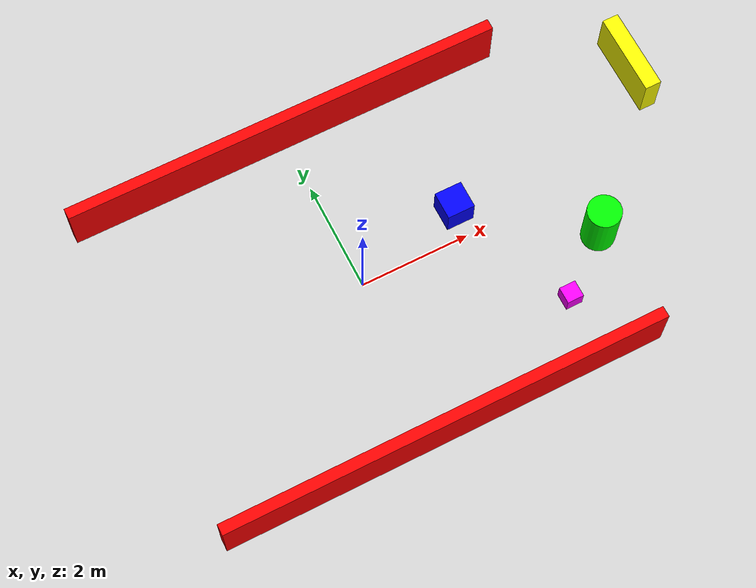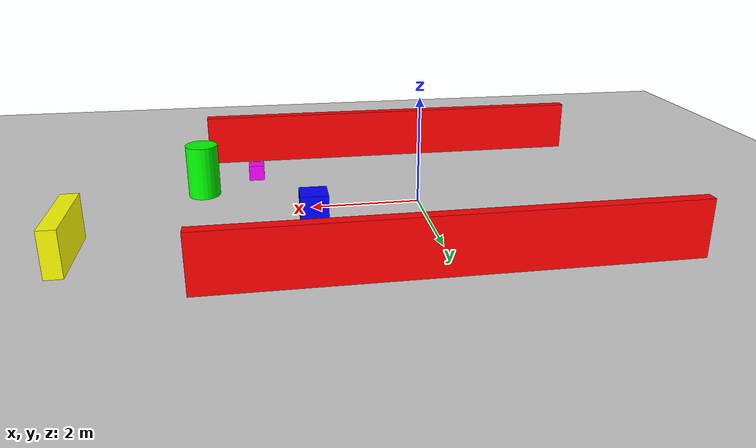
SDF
<?xml version="1.0"?>
<sdf version="1.8">
  <world name="obstacle_course">

    <physics name="1ms" type="ignored">
      <max_step_size>0.001</max_step_size>
      <real_time_factor>1.0</real_time_factor>
    </physics>

    <plugin filename="gz-sim-physics-system" name="gz::sim::systems::Physics"/>
    <plugin filename="gz-sim-user-commands-system" name="gz::sim::systems::UserCommands"/>
    <plugin filename="gz-sim-scene-broadcaster-system" name="gz::sim::systems::SceneBroadcaster"/>

    <!-- Sun -->
    <light type="directional" name="sun">
      <cast_shadows>true</cast_shadows>
      <pose>0 0 10 0 0 0</pose>
      <diffuse>0.8 0.8 0.8 1</diffuse>
      <specular>0.2 0.2 0.2 1</specular>
      <direction>-0.5 0.1 -0.9</direction>
    </light>

    <!-- Ground Plane -->
    <model name="ground_plane">
      <static>true</static>
      <link name="link">
        <collision name="collision">
          <geometry>
            <plane>
              <normal>0 0 1</normal>
              <size>100 100</size>
            </plane>
          </geometry>
        </collision>
        <visual name="visual">
          <geometry>
            <plane>
              <normal>0 0 1</normal>
              <size>100 100</size>
            </plane>
          </geometry>
          <material>
            <ambient>0.8 0.8 0.8 1</ambient>
            <diffuse>0.8 0.8 0.8 1</diffuse>
          </material>
        </visual>
      </link>
    </model>

    <!-- Wall 1 - Left side -->
    <model name="wall_left">
      <pose>0 3 0.5 0 0 0</pose>
      <static>true</static>
      <link name="link">
        <collision name="collision">
          <geometry>
            <box>
              <size>8 0.2 1</size>
            </box>
          </geometry>
        </collision>
        <visual name="visual">
          <geometry>
            <box>
              <size>8 0.2 1</size>
            </box>
          </geometry>
          <material>
            <ambient>1 0 0 1</ambient>
            <diffuse>1 0 0 1</diffuse>
          </material>
        </visual>
      </link>
    </model>

    <!-- Wall 2 - Right side -->
    <model name="wall_right">
      <pose>0 -3 0.5 0 0 0</pose>
      <static>true</static>
      <link name="link">
        <collision name="collision">
          <geometry>
            <box>
              <size>8 0.2 1</size>
            </box>
          </geometry>
        </collision>
        <visual name="visual">
          <geometry>
            <box>
              <size>8 0.2 1</size>
            </box>
          </geometry>
          <material>
            <ambient>1 0 0 1</ambient>
            <diffuse>1 0 0 1</diffuse>
          </material>
        </visual>
      </link>
    </model>

    <!-- Obstacle 1 - Box in path -->
    <model name="box1">
      <pose>2 0.5 0.25 0 0 0</pose>
      <static>true</static>
      <link name="link">
        <collision name="collision">
          <geometry>
            <box>
              <size>0.5 0.5 0.5</size>
            </box>
          </geometry>
        </collision>
        <visual name="visual">
          <geometry>
            <box>
              <size>0.5 0.5 0.5</size>
            </box>
          </geometry>
          <material>
            <ambient>0 0 1 1</ambient>
            <diffuse>0 0 1 1</diffuse>
          </material>
        </visual>
      </link>
    </model>

    <!-- Obstacle 2 - Cylinder -->
    <model name="cylinder1">
      <pose>4 -1 0.5 0 0 0</pose>
      <static>true</static>
      <link name="link">
        <collision name="collision">
          <geometry>
            <cylinder>
              <radius>0.3</radius>
              <length>1.0</length>
            </cylinder>
          </geometry>
        </collision>
        <visual name="visual">
          <geometry>
            <cylinder>
              <radius>0.3</radius>
              <length>1.0</length>
            </cylinder>
          </geometry>
          <material>
            <ambient>0 1 0 1</ambient>
            <diffuse>0 1 0 1</diffuse>
          </material>
        </visual>
      </link>
    </model>

    <!-- Obstacle 3 - Tall narrow box -->
    <model name="box2">
      <pose>6 1.5 0.4 0 0 0</pose>
      <static>true</static>
      <link name="link">
        <collision name="collision">
          <geometry>
            <box>
              <size>0.3 1.5 0.8</size>
            </box>
          </geometry>
        </collision>
        <visual name="visual">
          <geometry>
            <box>
              <size>0.3 1.5 0.8</size>
            </box>
          </geometry>
          <material>
            <ambient>1 1 0 1</ambient>
            <diffuse>1 1 0 1</diffuse>
          </material>
        </visual>
      </link>
    </model>

    <!-- Obstacle 4 - Small box -->
    <model name="box3">
      <pose>3 -1.8 0.15 0 0 0</pose>
      <static>true</static>
      <link name="link">
        <collision name="collision">
          <geometry>
            <box>
              <size>0.3 0.3 0.3</size>
            </box>
          </geometry>
        </collision>
        <visual name="visual">
          <geometry>
            <box>
              <size>0.3 0.3 0.3</size>
            </box>
          </geometry>
          <material>
            <ambient>1 0 1 1</ambient>
            <diffuse>1 0 1 1</diffuse>
          </material>
        </visual>
      </link>
    </model>

  </world>
</sdf>
